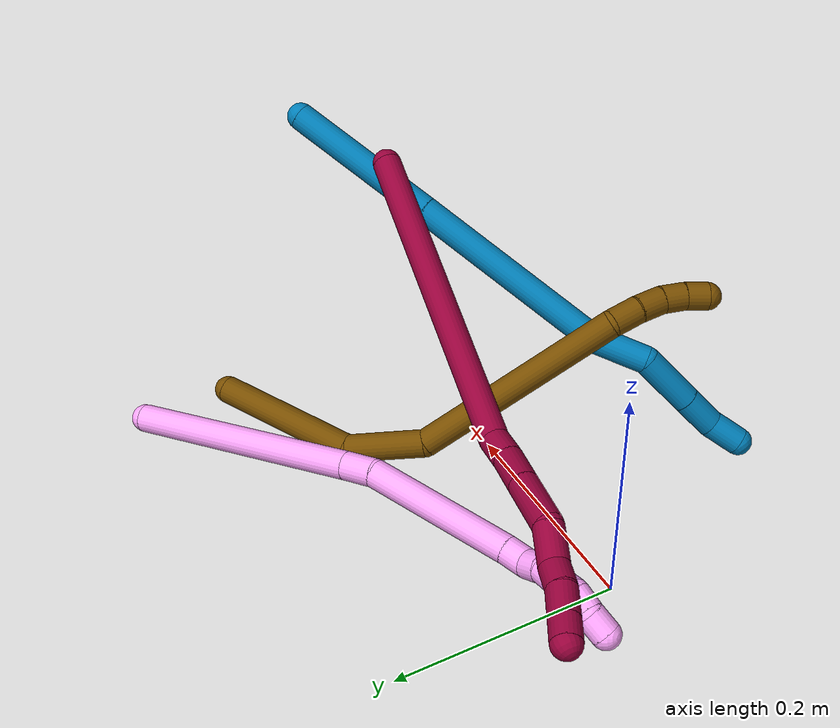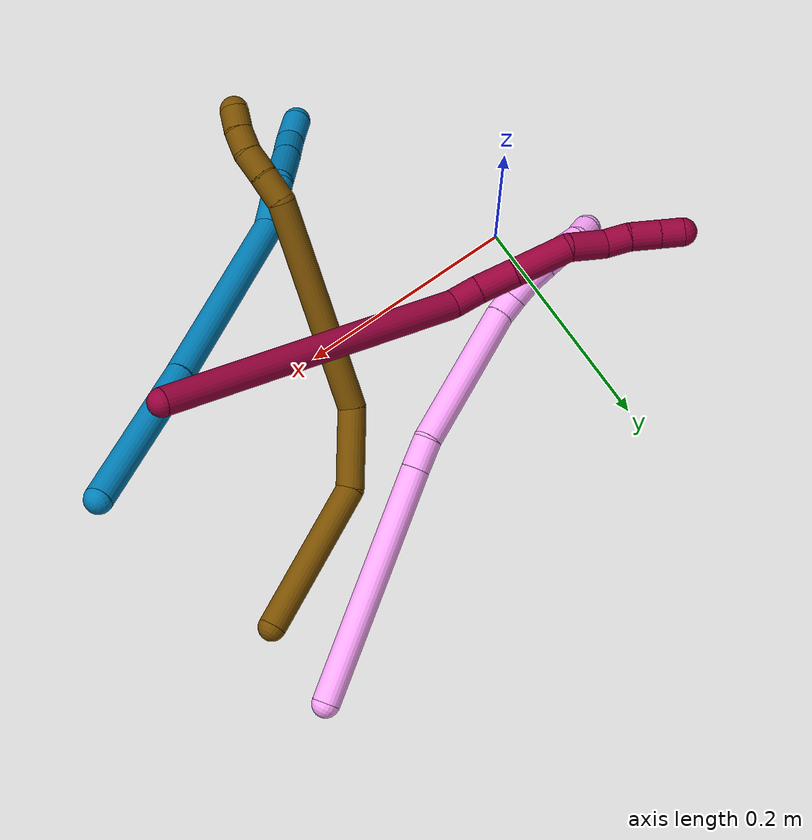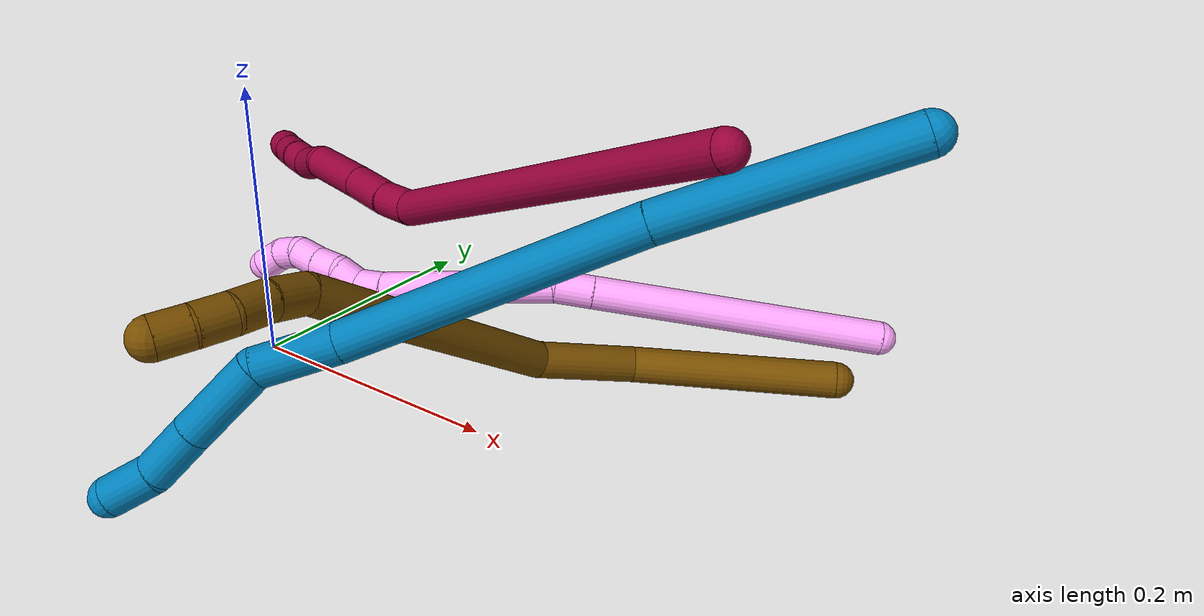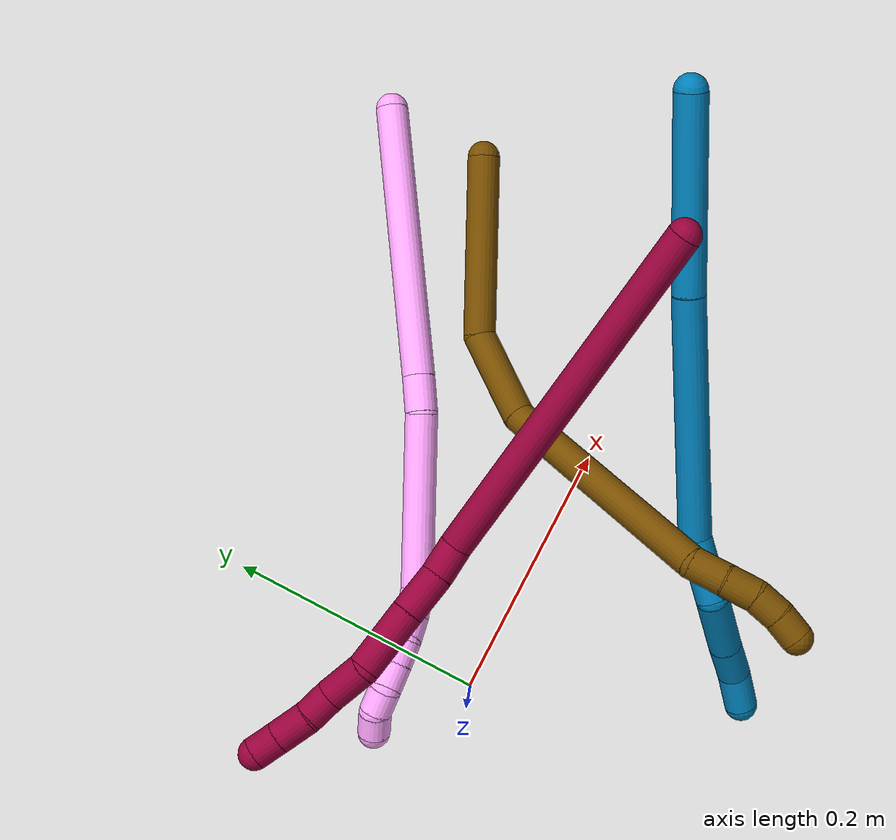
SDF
<sdf version="1.7">
 <world name="default">
  <model name="4">
   <static>0</static>
   <link name="4">
    <collision name="collision-cylinder-e_1_1_4">
     <pose>-0.015209 0.010615 -0.106325 -3.04209 -0.141389 1.91589</pose>
     <geometry><cylinder><radius>0.0125</radius><length>0.215861</length></cylinder></geometry>
     <surface>
      <friction><ode><mu>1.16</mu><mu2>1.16</mu2><slip1>0</slip1><slip2>0</slip2></ode></friction>
      <contact><ode><kp>1e+06</kp><kd>1</kd><max_vel>0</max_vel><min_depth>0.001</min_depth></ode></contact>
     </surface>
    </collision>
    <visual name="visual-cylinder-e_1_1_4">
     <pose>-0.015209 0.010615 -0.106325 -3.04209 -0.141389 1.91589</pose>
     <geometry><cylinder><radius>0.0125</radius><length>0.215861</length></cylinder></geometry>
     <material><ambient>1 0.65098 0.996078 1</ambient></material>
    </visual>
    <collision name="collision-cylinder-e_2_4_5">
     <pose>-0.032494 0.0223 -0.22663 -3.06519 -0.14695 2.18376</pose>
     <geometry><cylinder><radius>0.0125</radius><length>0.028347</length></cylinder></geometry>
     <surface>
      <friction><ode><mu>1.16</mu><mu2>1.16</mu2><slip1>0</slip1><slip2>0</slip2></ode></friction>
      <contact><ode><kp>1e+06</kp><kd>1</kd><max_vel>0</max_vel><min_depth>0.001</min_depth></ode></contact>
     </surface>
    </collision>
    <visual name="visual-cylinder-e_2_4_5">
     <pose>-0.032494 0.0223 -0.22663 -3.06519 -0.14695 2.18376</pose>
     <geometry><cylinder><radius>0.0125</radius><length>0.028347</length></cylinder></geometry>
     <material><ambient>1 0.65098 0.996078 1</ambient></material>
    </visual>
    <collision name="collision-cylinder-e_3_5_6">
     <pose>-0.058975 0.019294 -0.302964 3.07631 -0.372346 -2.79831</pose>
     <geometry><cylinder><radius>0.0125</radius><length>0.134167</length></cylinder></geometry>
     <surface>
      <friction><ode><mu>1.16</mu><mu2>1.16</mu2><slip1>0</slip1><slip2>0</slip2></ode></friction>
      <contact><ode><kp>1e+06</kp><kd>1</kd><max_vel>0</max_vel><min_depth>0.001</min_depth></ode></contact>
     </surface>
    </collision>
    <visual name="visual-cylinder-e_3_5_6">
     <pose>-0.058975 0.019294 -0.302964 3.07631 -0.372346 -2.79831</pose>
     <geometry><cylinder><radius>0.0125</radius><length>0.134167</length></cylinder></geometry>
     <material><ambient>1 0.65098 0.996078 1</ambient></material>
    </visual>
    <collision name="collision-cylinder-e_4_6_7">
     <pose>-0.086289 0.013185 -0.375494 2.9444 -0.273342 -1.89453</pose>
     <geometry><cylinder><radius>0.0125</radius><length>0.021556</length></cylinder></geometry>
     <surface>
      <friction><ode><mu>1.16</mu><mu2>1.16</mu2><slip1>0</slip1><slip2>0</slip2></ode></friction>
      <contact><ode><kp>1e+06</kp><kd>1</kd><max_vel>0</max_vel><min_depth>0.001</min_depth></ode></contact>
     </surface>
    </collision>
    <visual name="visual-cylinder-e_4_6_7">
     <pose>-0.086289 0.013185 -0.375494 2.9444 -0.273342 -1.89453</pose>
     <geometry><cylinder><radius>0.0125</radius><length>0.021556</length></cylinder></geometry>
     <material><ambient>1 0.65098 0.996078 1</ambient></material>
    </visual>
    <collision name="collision-cylinder-e_5_7_8">
     <pose>-0.087031 0.008907 -0.395172 2.90968 0.218465 1.51058</pose>
     <geometry><cylinder><radius>0.0125</radius><length>0.020001</length></cylinder></geometry>
     <surface>
      <friction><ode><mu>1.16</mu><mu2>1.16</mu2><slip1>0</slip1><slip2>0</slip2></ode></friction>
      <contact><ode><kp>1e+06</kp><kd>1</kd><max_vel>0</max_vel><min_depth>0.001</min_depth></ode></contact>
     </surface>
    </collision>
    <visual name="visual-cylinder-e_5_7_8">
     <pose>-0.087031 0.008907 -0.395172 2.90968 0.218465 1.51058</pose>
     <geometry><cylinder><radius>0.0125</radius><length>0.020001</length></cylinder></geometry>
     <material><ambient>1 0.65098 0.996078 1</ambient></material>
    </visual>
    <collision name="collision-cylinder-e_6_8_9">
     <pose>-0.085838 0.003002 -0.413952 2.76569 -0.097326 -0.501348</pose>
     <geometry><cylinder><radius>0.0125</radius><length>0.020043</length></cylinder></geometry>
     <surface>
      <friction><ode><mu>1.16</mu><mu2>1.16</mu2><slip1>0</slip1><slip2>0</slip2></ode></friction>
      <contact><ode><kp>1e+06</kp><kd>1</kd><max_vel>0</max_vel><min_depth>0.001</min_depth></ode></contact>
     </surface>
    </collision>
    <visual name="visual-cylinder-e_6_8_9">
     <pose>-0.085838 0.003002 -0.413952 2.76569 -0.097326 -0.501348</pose>
     <geometry><cylinder><radius>0.0125</radius><length>0.020043</length></cylinder></geometry>
     <material><ambient>1 0.65098 0.996078 1</ambient></material>
    </visual>
    <collision name="collision-cylinder-e_7_9_10">
     <pose>-0.086684 -0.004316 -0.43254 2.76738 0.012739 0.067262</pose>
     <geometry><cylinder><radius>0.0125</radius><length>0.020006</length></cylinder></geometry>
     <surface>
      <friction><ode><mu>1.16</mu><mu2>1.16</mu2><slip1>0</slip1><slip2>0</slip2></ode></friction>
      <contact><ode><kp>1e+06</kp><kd>1</kd><max_vel>0</max_vel><min_depth>0.001</min_depth></ode></contact>
     </surface>
    </collision>
    <visual name="visual-cylinder-e_7_9_10">
     <pose>-0.086684 -0.004316 -0.43254 2.76738 0.012739 0.067262</pose>
     <geometry><cylinder><radius>0.0125</radius><length>0.020006</length></cylinder></geometry>
     <material><ambient>1 0.65098 0.996078 1</ambient></material>
    </visual>
    <collision name="collision-cylinder-e_8_10_11">
     <pose>-0.09111 -0.012345 -0.449609 2.62838 -0.472578 -1.48498</pose>
     <geometry><cylinder><radius>0.0125</radius><length>0.020005</length></cylinder></geometry>
     <surface>
      <friction><ode><mu>1.16</mu><mu2>1.16</mu2><slip1>0</slip1><slip2>0</slip2></ode></friction>
      <contact><ode><kp>1e+06</kp><kd>1</kd><max_vel>0</max_vel><min_depth>0.001</min_depth></ode></contact>
     </surface>
    </collision>
    <visual name="visual-cylinder-e_8_10_11">
     <pose>-0.09111 -0.012345 -0.449609 2.62838 -0.472578 -1.48498</pose>
     <geometry><cylinder><radius>0.0125</radius><length>0.020005</length></cylinder></geometry>
     <material><ambient>1 0.65098 0.996078 1</ambient></material>
    </visual>
    <collision name="collision-cylinder-e_9_11_2">
     <pose>-0.103234 -0.018376 -0.463696 2.88539 -0.858163 -2.59273</pose>
     <geometry><cylinder><radius>0.0125</radius><length>0.020012</length></cylinder></geometry>
     <surface>
      <friction><ode><mu>1.16</mu><mu2>1.16</mu2><slip1>0</slip1><slip2>0</slip2></ode></friction>
      <contact><ode><kp>1e+06</kp><kd>1</kd><max_vel>0</max_vel><min_depth>0.001</min_depth></ode></contact>
     </surface>
    </collision>
    <visual name="visual-cylinder-e_9_11_2">
     <pose>-0.103234 -0.018376 -0.463696 2.88539 -0.858163 -2.59273</pose>
     <geometry><cylinder><radius>0.0125</radius><length>0.020012</length></cylinder></geometry>
     <material><ambient>1 0.65098 0.996078 1</ambient></material>
    </visual>
    <collision name="collision-sphere-2">
     <pose>-0.110805 -0.020034 -0.470025 0 -0 0</pose>
     <geometry><sphere><radius>0.0125</radius></sphere></geometry>
     <surface>
      <friction><ode><mu>1.16</mu><mu2>1.16</mu2><slip1>0</slip1><slip2>0</slip2></ode></friction>
      <contact><ode><kp>1e+06</kp><kd>1</kd><max_vel>0</max_vel><min_depth>0.001</min_depth></ode></contact>
     </surface>
    </collision>
    <visual name="visual-sphere-2">
     <pose>-0.110805 -0.020034 -0.470025 0 -0 0</pose>
     <geometry><sphere><radius>0.0125</radius></sphere></geometry>
     <material><ambient>1 0.65098 0.996078 1</ambient></material>
    </visual>
    <collision name="collision-sphere-11">
     <pose>-0.095663 -0.016718 -0.457368 0 -0 0</pose>
     <geometry><sphere><radius>0.0125</radius></sphere></geometry>
     <surface>
      <friction><ode><mu>1.16</mu><mu2>1.16</mu2><slip1>0</slip1><slip2>0</slip2></ode></friction>
      <contact><ode><kp>1e+06</kp><kd>1</kd><max_vel>0</max_vel><min_depth>0.001</min_depth></ode></contact>
     </surface>
    </collision>
    <visual name="visual-sphere-11">
     <pose>-0.095663 -0.016718 -0.457368 0 -0 0</pose>
     <geometry><sphere><radius>0.0125</radius></sphere></geometry>
     <material><ambient>1 0.65098 0.996078 1</ambient></material>
    </visual>
    <collision name="collision-sphere-10">
     <pose>-0.086557 -0.007972 -0.44185 0 -0 0</pose>
     <geometry><sphere><radius>0.0125</radius></sphere></geometry>
     <surface>
      <friction><ode><mu>1.16</mu><mu2>1.16</mu2><slip1>0</slip1><slip2>0</slip2></ode></friction>
      <contact><ode><kp>1e+06</kp><kd>1</kd><max_vel>0</max_vel><min_depth>0.001</min_depth></ode></contact>
     </surface>
    </collision>
    <visual name="visual-sphere-10">
     <pose>-0.086557 -0.007972 -0.44185 0 -0 0</pose>
     <geometry><sphere><radius>0.0125</radius></sphere></geometry>
     <material><ambient>1 0.65098 0.996078 1</ambient></material>
    </visual>
    <collision name="collision-sphere-9">
     <pose>-0.086811 -0.00066 -0.423229 0 -0 0</pose>
     <geometry><sphere><radius>0.0125</radius></sphere></geometry>
     <surface>
      <friction><ode><mu>1.16</mu><mu2>1.16</mu2><slip1>0</slip1><slip2>0</slip2></ode></friction>
      <contact><ode><kp>1e+06</kp><kd>1</kd><max_vel>0</max_vel><min_depth>0.001</min_depth></ode></contact>
     </surface>
    </collision>
    <visual name="visual-sphere-9">
     <pose>-0.086811 -0.00066 -0.423229 0 -0 0</pose>
     <geometry><sphere><radius>0.0125</radius></sphere></geometry>
     <material><ambient>1 0.65098 0.996078 1</ambient></material>
    </visual>
    <collision name="collision-sphere-4">
     <pose>-0.030419 0.02123 -0.21265 0 -0 0</pose>
     <geometry><sphere><radius>0.0125</radius></sphere></geometry>
     <surface>
      <friction><ode><mu>1.16</mu><mu2>1.16</mu2><slip1>0</slip1><slip2>0</slip2></ode></friction>
      <contact><ode><kp>1e+06</kp><kd>1</kd><max_vel>0</max_vel><min_depth>0.001</min_depth></ode></contact>
     </surface>
    </collision>
    <visual name="visual-sphere-4">
     <pose>-0.030419 0.02123 -0.21265 0 -0 0</pose>
     <geometry><sphere><radius>0.0125</radius></sphere></geometry>
     <material><ambient>1 0.65098 0.996078 1</ambient></material>
    </visual>
    <collision name="collision-sphere-1">
     <geometry><sphere><radius>0.0125</radius></sphere></geometry>
     <surface>
      <friction><ode><mu>1.16</mu><mu2>1.16</mu2><slip1>0</slip1><slip2>0</slip2></ode></friction>
      <contact><ode><kp>1e+06</kp><kd>1</kd><max_vel>0</max_vel><min_depth>0.001</min_depth></ode></contact>
     </surface>
    </collision>
    <visual name="visual-sphere-1">
     <geometry><sphere><radius>0.0125</radius></sphere></geometry>
     <material><ambient>1 0.65098 0.996078 1</ambient></material>
    </visual>
    <collision name="collision-sphere-8">
     <pose>-0.084864 0.006664 -0.404674 0 -0 0</pose>
     <geometry><sphere><radius>0.0125</radius></sphere></geometry>
     <surface>
      <friction><ode><mu>1.16</mu><mu2>1.16</mu2><slip1>0</slip1><slip2>0</slip2></ode></friction>
      <contact><ode><kp>1e+06</kp><kd>1</kd><max_vel>0</max_vel><min_depth>0.001</min_depth></ode></contact>
     </surface>
    </collision>
    <visual name="visual-sphere-8">
     <pose>-0.084864 0.006664 -0.404674 0 -0 0</pose>
     <geometry><sphere><radius>0.0125</radius></sphere></geometry>
     <material><ambient>1 0.65098 0.996078 1</ambient></material>
    </visual>
    <collision name="collision-sphere-5">
     <pose>-0.034569 0.02337 -0.24061 0 -0 0</pose>
     <geometry><sphere><radius>0.0125</radius></sphere></geometry>
     <surface>
      <friction><ode><mu>1.16</mu><mu2>1.16</mu2><slip1>0</slip1><slip2>0</slip2></ode></friction>
      <contact><ode><kp>1e+06</kp><kd>1</kd><max_vel>0</max_vel><min_depth>0.001</min_depth></ode></contact>
     </surface>
    </collision>
    <visual name="visual-sphere-5">
     <pose>-0.034569 0.02337 -0.24061 0 -0 0</pose>
     <geometry><sphere><radius>0.0125</radius></sphere></geometry>
     <material><ambient>1 0.65098 0.996078 1</ambient></material>
    </visual>
    <collision name="collision-sphere-6">
     <pose>-0.08338 0.015218 -0.365317 0 -0 0</pose>
     <geometry><sphere><radius>0.0125</radius></sphere></geometry>
     <surface>
      <friction><ode><mu>1.16</mu><mu2>1.16</mu2><slip1>0</slip1><slip2>0</slip2></ode></friction>
      <contact><ode><kp>1e+06</kp><kd>1</kd><max_vel>0</max_vel><min_depth>0.001</min_depth></ode></contact>
     </surface>
    </collision>
    <visual name="visual-sphere-6">
     <pose>-0.08338 0.015218 -0.365317 0 -0 0</pose>
     <geometry><sphere><radius>0.0125</radius></sphere></geometry>
     <material><ambient>1 0.65098 0.996078 1</ambient></material>
    </visual>
    <collision name="collision-sphere-7">
     <pose>-0.089199 0.011151 -0.385671 0 -0 0</pose>
     <geometry><sphere><radius>0.0125</radius></sphere></geometry>
     <surface>
      <friction><ode><mu>1.16</mu><mu2>1.16</mu2><slip1>0</slip1><slip2>0</slip2></ode></friction>
      <contact><ode><kp>1e+06</kp><kd>1</kd><max_vel>0</max_vel><min_depth>0.001</min_depth></ode></contact>
     </surface>
    </collision>
    <visual name="visual-sphere-7">
     <pose>-0.089199 0.011151 -0.385671 0 -0 0</pose>
     <geometry><sphere><radius>0.0125</radius></sphere></geometry>
     <material><ambient>1 0.65098 0.996078 1</ambient></material>
    </visual>
    <inertial>
     <pose>-0.046122 0.010667 -0.242493 0 -0 0</pose>
     <mass>0.5</mass>
     <inertia>
      <ixx>0.000251</ixx>
      <ixy>0</ixy>
      <ixz>0</ixz>
      <iyy>0.001216</iyy>
      <iyz>0</iyz>
      <izz>9.2e-05</izz>
     </inertia>
    </inertial>
   </link>
   <pose>0.37061 0.262694 0.012287 2.7239 -1.26305 0.90536</pose>
  </model>
  <model name="8">
   <static>0</static>
   <link name="8">
    <collision name="collision-cylinder-e_1_1_4">
     <pose>0.010021 0.007315 -0.142008 -3.09013 0.070355 -1.87864</pose>
     <geometry><cylinder><radius>0.0125</radius><length>0.285098</length></cylinder></geometry>
     <surface>
      <friction><ode><mu>1.16</mu><mu2>1.16</mu2><slip1>0</slip1><slip2>0</slip2></ode></friction>
      <contact><ode><kp>1e+06</kp><kd>1</kd><max_vel>0</max_vel><min_depth>0.001</min_depth></ode></contact>
     </surface>
    </collision>
    <visual name="visual-cylinder-e_1_1_4">
     <pose>0.010021 0.007315 -0.142008 -3.09013 0.070355 -1.87864</pose>
     <geometry><cylinder><radius>0.0125</radius><length>0.285098</length></cylinder></geometry>
     <material><ambient>0.584314 0 0.227451 1</ambient></material>
    </visual>
    <collision name="collision-cylinder-e_2_4_5">
     <pose>0.015808 0.015663 -0.296211 -3.05707 -0.333031 2.64865</pose>
     <geometry><cylinder><radius>0.0125</radius><length>0.025901</length></cylinder></geometry>
     <surface>
      <friction><ode><mu>1.16</mu><mu2>1.16</mu2><slip1>0</slip1><slip2>0</slip2></ode></friction>
      <contact><ode><kp>1e+06</kp><kd>1</kd><max_vel>0</max_vel><min_depth>0.001</min_depth></ode></contact>
     </surface>
    </collision>
    <visual name="visual-cylinder-e_2_4_5">
     <pose>0.015808 0.015663 -0.296211 -3.05707 -0.333031 2.64865</pose>
     <geometry><cylinder><radius>0.0125</radius><length>0.025901</length></cylinder></geometry>
     <material><ambient>0.584314 0 0.227451 1</ambient></material>
    </visual>
    <collision name="collision-cylinder-e_3_5_6">
     <pose>0.005284 0.020031 -0.324064 -2.93175 -0.374417 2.12683</pose>
     <geometry><cylinder><radius>0.0125</radius><length>0.034401</length></cylinder></geometry>
     <surface>
      <friction><ode><mu>1.16</mu><mu2>1.16</mu2><slip1>0</slip1><slip2>0</slip2></ode></friction>
      <contact><ode><kp>1e+06</kp><kd>1</kd><max_vel>0</max_vel><min_depth>0.001</min_depth></ode></contact>
     </surface>
    </collision>
    <visual name="visual-cylinder-e_3_5_6">
     <pose>0.005284 0.020031 -0.324064 -2.93175 -0.374417 2.12683</pose>
     <geometry><cylinder><radius>0.0125</radius><length>0.034401</length></cylinder></geometry>
     <material><ambient>0.584314 0 0.227451 1</ambient></material>
    </visual>
    <collision name="collision-cylinder-e_4_6_7">
     <pose>-0.009896 0.027849 -0.363132 -2.95237 -0.356931 2.17304</pose>
     <geometry><cylinder><radius>0.0125</radius><length>0.050878</length></cylinder></geometry>
     <surface>
      <friction><ode><mu>1.16</mu><mu2>1.16</mu2><slip1>0</slip1><slip2>0</slip2></ode></friction>
      <contact><ode><kp>1e+06</kp><kd>1</kd><max_vel>0</max_vel><min_depth>0.001</min_depth></ode></contact>
     </surface>
    </collision>
    <visual name="visual-cylinder-e_4_6_7">
     <pose>-0.009896 0.027849 -0.363132 -2.95237 -0.356931 2.17304</pose>
     <geometry><cylinder><radius>0.0125</radius><length>0.050878</length></cylinder></geometry>
     <material><ambient>0.584314 0 0.227451 1</ambient></material>
    </visual>
    <collision name="collision-cylinder-e_5_7_8">
     <pose>-0.017481 0.037193 -0.402684 -2.84915 0.077148 -0.512571</pose>
     <geometry><cylinder><radius>0.0125</radius><length>0.033817</length></cylinder></geometry>
     <surface>
      <friction><ode><mu>1.16</mu><mu2>1.16</mu2><slip1>0</slip1><slip2>0</slip2></ode></friction>
      <contact><ode><kp>1e+06</kp><kd>1</kd><max_vel>0</max_vel><min_depth>0.001</min_depth></ode></contact>
     </surface>
    </collision>
    <visual name="visual-cylinder-e_5_7_8">
     <pose>-0.017481 0.037193 -0.402684 -2.84915 0.077148 -0.512571</pose>
     <geometry><cylinder><radius>0.0125</radius><length>0.033817</length></cylinder></geometry>
     <material><ambient>0.584314 0 0.227451 1</ambient></material>
    </visual>
    <collision name="collision-cylinder-e_6_8_9">
     <pose>-0.018984 0.045475 -0.42913 -2.82092 -0.25297 1.33267</pose>
     <geometry><cylinder><radius>0.0125</radius><length>0.022428</length></cylinder></geometry>
     <surface>
      <friction><ode><mu>1.16</mu><mu2>1.16</mu2><slip1>0</slip1><slip2>0</slip2></ode></friction>
      <contact><ode><kp>1e+06</kp><kd>1</kd><max_vel>0</max_vel><min_depth>0.001</min_depth></ode></contact>
     </surface>
    </collision>
    <visual name="visual-cylinder-e_6_8_9">
     <pose>-0.018984 0.045475 -0.42913 -2.82092 -0.25297 1.33267</pose>
     <geometry><cylinder><radius>0.0125</radius><length>0.022428</length></cylinder></geometry>
     <material><ambient>0.584314 0 0.227451 1</ambient></material>
    </visual>
    <collision name="collision-cylinder-e_7_9_10">
     <pose>-0.023056 0.054462 -0.451499 -2.70944 -0.094914 0.426156</pose>
     <geometry><cylinder><radius>0.0125</radius><length>0.026693</length></cylinder></geometry>
     <surface>
      <friction><ode><mu>1.16</mu><mu2>1.16</mu2><slip1>0</slip1><slip2>0</slip2></ode></friction>
      <contact><ode><kp>1e+06</kp><kd>1</kd><max_vel>0</max_vel><min_depth>0.001</min_depth></ode></contact>
     </surface>
    </collision>
    <visual name="visual-cylinder-e_7_9_10">
     <pose>-0.023056 0.054462 -0.451499 -2.70944 -0.094914 0.426156</pose>
     <geometry><cylinder><radius>0.0125</radius><length>0.026693</length></cylinder></geometry>
     <material><ambient>0.584314 0 0.227451 1</ambient></material>
    </visual>
    <collision name="collision-cylinder-e_8_10_2">
     <pose>-0.025618 0.064548 -0.472831 -2.68771 -0.125113 0.529762</pose>
     <geometry><cylinder><radius>0.0125</radius><length>0.020785</length></cylinder></geometry>
     <surface>
      <friction><ode><mu>1.16</mu><mu2>1.16</mu2><slip1>0</slip1><slip2>0</slip2></ode></friction>
      <contact><ode><kp>1e+06</kp><kd>1</kd><max_vel>0</max_vel><min_depth>0.001</min_depth></ode></contact>
     </surface>
    </collision>
    <visual name="visual-cylinder-e_8_10_2">
     <pose>-0.025618 0.064548 -0.472831 -2.68771 -0.125113 0.529762</pose>
     <geometry><cylinder><radius>0.0125</radius><length>0.020785</length></cylinder></geometry>
     <material><ambient>0.584314 0 0.227451 1</ambient></material>
    </visual>
    <collision name="collision-sphere-2">
     <pose>-0.026914 0.069069 -0.482098 0 -0 0</pose>
     <geometry><sphere><radius>0.0125</radius></sphere></geometry>
     <surface>
      <friction><ode><mu>1.16</mu><mu2>1.16</mu2><slip1>0</slip1><slip2>0</slip2></ode></friction>
      <contact><ode><kp>1e+06</kp><kd>1</kd><max_vel>0</max_vel><min_depth>0.001</min_depth></ode></contact>
     </surface>
    </collision>
    <visual name="visual-sphere-2">
     <pose>-0.026914 0.069069 -0.482098 0 -0 0</pose>
     <geometry><sphere><radius>0.0125</radius></sphere></geometry>
     <material><ambient>0.584314 0 0.227451 1</ambient></material>
    </visual>
    <collision name="collision-sphere-10">
     <pose>-0.024321 0.060027 -0.463564 0 -0 0</pose>
     <geometry><sphere><radius>0.0125</radius></sphere></geometry>
     <surface>
      <friction><ode><mu>1.16</mu><mu2>1.16</mu2><slip1>0</slip1><slip2>0</slip2></ode></friction>
      <contact><ode><kp>1e+06</kp><kd>1</kd><max_vel>0</max_vel><min_depth>0.001</min_depth></ode></contact>
     </surface>
    </collision>
    <visual name="visual-sphere-10">
     <pose>-0.024321 0.060027 -0.463564 0 -0 0</pose>
     <geometry><sphere><radius>0.0125</radius></sphere></geometry>
     <material><ambient>0.584314 0 0.227451 1</ambient></material>
    </visual>
    <collision name="collision-sphere-9">
     <pose>-0.021791 0.048897 -0.439434 0 -0 0</pose>
     <geometry><sphere><radius>0.0125</radius></sphere></geometry>
     <surface>
      <friction><ode><mu>1.16</mu><mu2>1.16</mu2><slip1>0</slip1><slip2>0</slip2></ode></friction>
      <contact><ode><kp>1e+06</kp><kd>1</kd><max_vel>0</max_vel><min_depth>0.001</min_depth></ode></contact>
     </surface>
    </collision>
    <visual name="visual-sphere-9">
     <pose>-0.021791 0.048897 -0.439434 0 -0 0</pose>
     <geometry><sphere><radius>0.0125</radius></sphere></geometry>
     <material><ambient>0.584314 0 0.227451 1</ambient></material>
    </visual>
    <collision name="collision-sphere-4">
     <pose>0.020041 0.01463 -0.284016 0 -0 0</pose>
     <geometry><sphere><radius>0.0125</radius></sphere></geometry>
     <surface>
      <friction><ode><mu>1.16</mu><mu2>1.16</mu2><slip1>0</slip1><slip2>0</slip2></ode></friction>
      <contact><ode><kp>1e+06</kp><kd>1</kd><max_vel>0</max_vel><min_depth>0.001</min_depth></ode></contact>
     </surface>
    </collision>
    <visual name="visual-sphere-4">
     <pose>0.020041 0.01463 -0.284016 0 -0 0</pose>
     <geometry><sphere><radius>0.0125</radius></sphere></geometry>
     <material><ambient>0.584314 0 0.227451 1</ambient></material>
    </visual>
    <collision name="collision-sphere-1">
     <geometry><sphere><radius>0.0125</radius></sphere></geometry>
     <surface>
      <friction><ode><mu>1.16</mu><mu2>1.16</mu2><slip1>0</slip1><slip2>0</slip2></ode></friction>
      <contact><ode><kp>1e+06</kp><kd>1</kd><max_vel>0</max_vel><min_depth>0.001</min_depth></ode></contact>
     </surface>
    </collision>
    <visual name="visual-sphere-1">
     <geometry><sphere><radius>0.0125</radius></sphere></geometry>
     <material><ambient>0.584314 0 0.227451 1</ambient></material>
    </visual>
    <collision name="collision-sphere-8">
     <pose>-0.016178 0.042053 -0.418827 0 -0 0</pose>
     <geometry><sphere><radius>0.0125</radius></sphere></geometry>
     <surface>
      <friction><ode><mu>1.16</mu><mu2>1.16</mu2><slip1>0</slip1><slip2>0</slip2></ode></friction>
      <contact><ode><kp>1e+06</kp><kd>1</kd><max_vel>0</max_vel><min_depth>0.001</min_depth></ode></contact>
     </surface>
    </collision>
    <visual name="visual-sphere-8">
     <pose>-0.016178 0.042053 -0.418827 0 -0 0</pose>
     <geometry><sphere><radius>0.0125</radius></sphere></geometry>
     <material><ambient>0.584314 0 0.227451 1</ambient></material>
    </visual>
    <collision name="collision-sphere-5">
     <pose>0.011574 0.016696 -0.308406 0 -0 0</pose>
     <geometry><sphere><radius>0.0125</radius></sphere></geometry>
     <surface>
      <friction><ode><mu>1.16</mu><mu2>1.16</mu2><slip1>0</slip1><slip2>0</slip2></ode></friction>
      <contact><ode><kp>1e+06</kp><kd>1</kd><max_vel>0</max_vel><min_depth>0.001</min_depth></ode></contact>
     </surface>
    </collision>
    <visual name="visual-sphere-5">
     <pose>0.011574 0.016696 -0.308406 0 -0 0</pose>
     <geometry><sphere><radius>0.0125</radius></sphere></geometry>
     <material><ambient>0.584314 0 0.227451 1</ambient></material>
    </visual>
    <collision name="collision-sphere-6">
     <pose>-0.001007 0.023366 -0.339721 0 -0 0</pose>
     <geometry><sphere><radius>0.0125</radius></sphere></geometry>
     <surface>
      <friction><ode><mu>1.16</mu><mu2>1.16</mu2><slip1>0</slip1><slip2>0</slip2></ode></friction>
      <contact><ode><kp>1e+06</kp><kd>1</kd><max_vel>0</max_vel><min_depth>0.001</min_depth></ode></contact>
     </surface>
    </collision>
    <visual name="visual-sphere-6">
     <pose>-0.001007 0.023366 -0.339721 0 -0 0</pose>
     <geometry><sphere><radius>0.0125</radius></sphere></geometry>
     <material><ambient>0.584314 0 0.227451 1</ambient></material>
    </visual>
    <collision name="collision-sphere-7">
     <pose>-0.018784 0.032332 -0.386542 0 -0 0</pose>
     <geometry><sphere><radius>0.0125</radius></sphere></geometry>
     <surface>
      <friction><ode><mu>1.16</mu><mu2>1.16</mu2><slip1>0</slip1><slip2>0</slip2></ode></friction>
      <contact><ode><kp>1e+06</kp><kd>1</kd><max_vel>0</max_vel><min_depth>0.001</min_depth></ode></contact>
     </surface>
    </collision>
    <visual name="visual-sphere-7">
     <pose>-0.018784 0.032332 -0.386542 0 -0 0</pose>
     <geometry><sphere><radius>0.0125</radius></sphere></geometry>
     <material><ambient>0.584314 0 0.227451 1</ambient></material>
    </visual>
    <inertial>
     <pose>0.00156 0.01934 -0.245807 0 -0 0</pose>
     <mass>0.5</mass>
     <inertia>
      <ixx>-0.002422</ixx>
      <ixy>0</ixy>
      <ixz>0</ixz>
      <iyy>-0.001225</iyy>
      <iyz>0</iyz>
      <izz>-0.000273</izz>
     </inertia>
    </inertial>
   </link>
   <pose>0.356409 0.017487 0.218425 0.610709 1.18371 0.561844</pose>
  </model>
  <model name="9">
   <static>0</static>
   <link name="9">
    <collision name="collision-cylinder-e_1_1_4">
     <pose>-0.02236 -0.004384 -0.068407 3.0776 -0.31532 -2.74421</pose>
     <geometry><cylinder><radius>0.0125</radius><length>0.144204</length></cylinder></geometry>
     <surface>
      <friction><ode><mu>1.16</mu><mu2>1.16</mu2><slip1>0</slip1><slip2>0</slip2></ode></friction>
      <contact><ode><kp>1e+06</kp><kd>1</kd><max_vel>0</max_vel><min_depth>0.001</min_depth></ode></contact>
     </surface>
    </collision>
    <visual name="visual-cylinder-e_1_1_4">
     <pose>-0.02236 -0.004384 -0.068407 3.0776 -0.31532 -2.74421</pose>
     <geometry><cylinder><radius>0.0125</radius><length>0.144204</length></cylinder></geometry>
     <material><ambient>0 0.490196 0.709804 1</ambient></material>
    </visual>
    <collision name="collision-cylinder-e_2_4_5">
     <pose>-0.069618 -0.018275 -0.227054 3.03662 -0.267787 -2.39786</pose>
     <geometry><cylinder><radius>0.0125</radius><length>0.188188</length></cylinder></geometry>
     <surface>
      <friction><ode><mu>1.16</mu><mu2>1.16</mu2><slip1>0</slip1><slip2>0</slip2></ode></friction>
      <contact><ode><kp>1e+06</kp><kd>1</kd><max_vel>0</max_vel><min_depth>0.001</min_depth></ode></contact>
     </surface>
    </collision>
    <visual name="visual-cylinder-e_2_4_5">
     <pose>-0.069618 -0.018275 -0.227054 3.03662 -0.267787 -2.39786</pose>
     <geometry><cylinder><radius>0.0125</radius><length>0.188188</length></cylinder></geometry>
     <material><ambient>0 0.490196 0.709804 1</ambient></material>
    </visual>
    <collision name="collision-cylinder-e_3_5_6">
     <pose>-0.104604 -0.035633 -0.338676 2.78974 -0.416999 -1.74404</pose>
     <geometry><cylinder><radius>0.0125</radius><length>0.049823</length></cylinder></geometry>
     <surface>
      <friction><ode><mu>1.16</mu><mu2>1.16</mu2><slip1>0</slip1><slip2>0</slip2></ode></friction>
      <contact><ode><kp>1e+06</kp><kd>1</kd><max_vel>0</max_vel><min_depth>0.001</min_depth></ode></contact>
     </surface>
    </collision>
    <visual name="visual-cylinder-e_3_5_6">
     <pose>-0.104604 -0.035633 -0.338676 2.78974 -0.416999 -1.74404</pose>
     <geometry><cylinder><radius>0.0125</radius><length>0.049823</length></cylinder></geometry>
     <material><ambient>0 0.490196 0.709804 1</ambient></material>
    </visual>
    <collision name="collision-cylinder-e_4_6_7">
     <pose>-0.112146 -0.051475 -0.385508 2.83732 0.095235 0.602677</pose>
     <geometry><cylinder><radius>0.0125</radius><length>0.053594</length></cylinder></geometry>
     <surface>
      <friction><ode><mu>1.16</mu><mu2>1.16</mu2><slip1>0</slip1><slip2>0</slip2></ode></friction>
      <contact><ode><kp>1e+06</kp><kd>1</kd><max_vel>0</max_vel><min_depth>0.001</min_depth></ode></contact>
     </surface>
    </collision>
    <visual name="visual-cylinder-e_4_6_7">
     <pose>-0.112146 -0.051475 -0.385508 2.83732 0.095235 0.602677</pose>
     <geometry><cylinder><radius>0.0125</radius><length>0.053594</length></cylinder></geometry>
     <material><ambient>0 0.490196 0.709804 1</ambient></material>
    </visual>
    <collision name="collision-cylinder-e_5_7_8">
     <pose>-0.107772 -0.064979 -0.42704 2.81141 0.106956 0.621738</pose>
     <geometry><cylinder><radius>0.0125</radius><length>0.034194</length></cylinder></geometry>
     <surface>
      <friction><ode><mu>1.16</mu><mu2>1.16</mu2><slip1>0</slip1><slip2>0</slip2></ode></friction>
      <contact><ode><kp>1e+06</kp><kd>1</kd><max_vel>0</max_vel><min_depth>0.001</min_depth></ode></contact>
     </surface>
    </collision>
    <visual name="visual-cylinder-e_5_7_8">
     <pose>-0.107772 -0.064979 -0.42704 2.81141 0.106956 0.621738</pose>
     <geometry><cylinder><radius>0.0125</radius><length>0.034194</length></cylinder></geometry>
     <material><ambient>0 0.490196 0.709804 1</ambient></material>
    </visual>
    <collision name="collision-cylinder-e_6_8_2">
     <pose>-0.108839 -0.074643 -0.45724 2.85552 -0.194034 -1.18855</pose>
     <geometry><cylinder><radius>0.0125</radius><length>0.029997</length></cylinder></geometry>
     <surface>
      <friction><ode><mu>1.16</mu><mu2>1.16</mu2><slip1>0</slip1><slip2>0</slip2></ode></friction>
      <contact><ode><kp>1e+06</kp><kd>1</kd><max_vel>0</max_vel><min_depth>0.001</min_depth></ode></contact>
     </surface>
    </collision>
    <visual name="visual-cylinder-e_6_8_2">
     <pose>-0.108839 -0.074643 -0.45724 2.85552 -0.194034 -1.18855</pose>
     <geometry><cylinder><radius>0.0125</radius><length>0.029997</length></cylinder></geometry>
     <material><ambient>0 0.490196 0.709804 1</ambient></material>
    </visual>
    <collision name="collision-sphere-2">
     <pose>-0.111731 -0.078796 -0.471359 0 -0 0</pose>
     <geometry><sphere><radius>0.0125</radius></sphere></geometry>
     <surface>
      <friction><ode><mu>1.16</mu><mu2>1.16</mu2><slip1>0</slip1><slip2>0</slip2></ode></friction>
      <contact><ode><kp>1e+06</kp><kd>1</kd><max_vel>0</max_vel><min_depth>0.001</min_depth></ode></contact>
     </surface>
    </collision>
    <visual name="visual-sphere-2">
     <pose>-0.111731 -0.078796 -0.471359 0 -0 0</pose>
     <geometry><sphere><radius>0.0125</radius></sphere></geometry>
     <material><ambient>0 0.490196 0.709804 1</ambient></material>
    </visual>
    <collision name="collision-sphere-4">
     <pose>-0.04472 -0.008768 -0.136813 0 -0 0</pose>
     <geometry><sphere><radius>0.0125</radius></sphere></geometry>
     <surface>
      <friction><ode><mu>1.16</mu><mu2>1.16</mu2><slip1>0</slip1><slip2>0</slip2></ode></friction>
      <contact><ode><kp>1e+06</kp><kd>1</kd><max_vel>0</max_vel><min_depth>0.001</min_depth></ode></contact>
     </surface>
    </collision>
    <visual name="visual-sphere-4">
     <pose>-0.04472 -0.008768 -0.136813 0 -0 0</pose>
     <geometry><sphere><radius>0.0125</radius></sphere></geometry>
     <material><ambient>0 0.490196 0.709804 1</ambient></material>
    </visual>
    <collision name="collision-sphere-1">
     <geometry><sphere><radius>0.0125</radius></sphere></geometry>
     <surface>
      <friction><ode><mu>1.16</mu><mu2>1.16</mu2><slip1>0</slip1><slip2>0</slip2></ode></friction>
      <contact><ode><kp>1e+06</kp><kd>1</kd><max_vel>0</max_vel><min_depth>0.001</min_depth></ode></contact>
     </surface>
    </collision>
    <visual name="visual-sphere-1">
     <geometry><sphere><radius>0.0125</radius></sphere></geometry>
     <material><ambient>0 0.490196 0.709804 1</ambient></material>
    </visual>
    <collision name="collision-sphere-8">
     <pose>-0.105947 -0.07049 -0.443121 0 -0 0</pose>
     <geometry><sphere><radius>0.0125</radius></sphere></geometry>
     <surface>
      <friction><ode><mu>1.16</mu><mu2>1.16</mu2><slip1>0</slip1><slip2>0</slip2></ode></friction>
      <contact><ode><kp>1e+06</kp><kd>1</kd><max_vel>0</max_vel><min_depth>0.001</min_depth></ode></contact>
     </surface>
    </collision>
    <visual name="visual-sphere-8">
     <pose>-0.105947 -0.07049 -0.443121 0 -0 0</pose>
     <geometry><sphere><radius>0.0125</radius></sphere></geometry>
     <material><ambient>0 0.490196 0.709804 1</ambient></material>
    </visual>
    <collision name="collision-sphere-5">
     <pose>-0.094515 -0.027783 -0.317295 0 -0 0</pose>
     <geometry><sphere><radius>0.0125</radius></sphere></geometry>
     <surface>
      <friction><ode><mu>1.16</mu><mu2>1.16</mu2><slip1>0</slip1><slip2>0</slip2></ode></friction>
      <contact><ode><kp>1e+06</kp><kd>1</kd><max_vel>0</max_vel><min_depth>0.001</min_depth></ode></contact>
     </surface>
    </collision>
    <visual name="visual-sphere-5">
     <pose>-0.094515 -0.027783 -0.317295 0 -0 0</pose>
     <geometry><sphere><radius>0.0125</radius></sphere></geometry>
     <material><ambient>0 0.490196 0.709804 1</ambient></material>
    </visual>
    <collision name="collision-sphere-6">
     <pose>-0.114694 -0.043483 -0.360058 0 -0 0</pose>
     <geometry><sphere><radius>0.0125</radius></sphere></geometry>
     <surface>
      <friction><ode><mu>1.16</mu><mu2>1.16</mu2><slip1>0</slip1><slip2>0</slip2></ode></friction>
      <contact><ode><kp>1e+06</kp><kd>1</kd><max_vel>0</max_vel><min_depth>0.001</min_depth></ode></contact>
     </surface>
    </collision>
    <visual name="visual-sphere-6">
     <pose>-0.114694 -0.043483 -0.360058 0 -0 0</pose>
     <geometry><sphere><radius>0.0125</radius></sphere></geometry>
     <material><ambient>0 0.490196 0.709804 1</ambient></material>
    </visual>
    <collision name="collision-sphere-7">
     <pose>-0.109597 -0.059467 -0.410958 0 -0 0</pose>
     <geometry><sphere><radius>0.0125</radius></sphere></geometry>
     <surface>
      <friction><ode><mu>1.16</mu><mu2>1.16</mu2><slip1>0</slip1><slip2>0</slip2></ode></friction>
      <contact><ode><kp>1e+06</kp><kd>1</kd><max_vel>0</max_vel><min_depth>0.001</min_depth></ode></contact>
     </surface>
    </collision>
    <visual name="visual-sphere-7">
     <pose>-0.109597 -0.059467 -0.410958 0 -0 0</pose>
     <geometry><sphere><radius>0.0125</radius></sphere></geometry>
     <material><ambient>0 0.490196 0.709804 1</ambient></material>
    </visual>
    <inertial>
     <pose>-0.068995 -0.026133 -0.236893 0 -0 0</pose>
     <mass>0.5</mass>
     <inertia>
      <ixx>-0.001081</ixx>
      <ixy>0</ixy>
      <ixz>0</ixz>
      <iyy>0.000177</iyy>
      <iyz>0</iyz>
      <izz>0.000278</izz>
     </inertia>
    </inertial>
   </link>
   <pose>0.444076 0.059376 0.232823 0.091816 0.872377 0.530914</pose>
  </model>
  <model name="12">
   <static>0</static>
   <link name="12">
    <collision name="collision-cylinder-e_1_1_4">
     <pose>0.000469 -0.000294 0.070008 0.0042 0.006698 1.4e-05</pose>
     <geometry><cylinder><radius>0.0125</radius><length>0.14002</length></cylinder></geometry>
     <surface>
      <friction><ode><mu>1.16</mu><mu2>1.16</mu2><slip1>0</slip1><slip2>0</slip2></ode></friction>
      <contact><ode><kp>1e+06</kp><kd>1</kd><max_vel>0</max_vel><min_depth>0.001</min_depth></ode></contact>
     </surface>
    </collision>
    <visual name="visual-cylinder-e_1_1_4">
     <pose>0.000469 -0.000294 0.070008 0.0042 0.006698 1.4e-05</pose>
     <geometry><cylinder><radius>0.0125</radius><length>0.14002</length></cylinder></geometry>
     <material><ambient>0.466667 0.301961 0 1</ambient></material>
    </visual>
    <collision name="collision-cylinder-e_2_4_5">
     <pose>-0.014942 -0.008437 0.171368 0.245312 -0.456686 -0.057282</pose>
     <geometry><cylinder><radius>0.0125</radius><length>0.07202</length></cylinder></geometry>
     <surface>
      <friction><ode><mu>1.16</mu><mu2>1.16</mu2><slip1>0</slip1><slip2>0</slip2></ode></friction>
      <contact><ode><kp>1e+06</kp><kd>1</kd><max_vel>0</max_vel><min_depth>0.001</min_depth></ode></contact>
     </surface>
    </collision>
    <visual name="visual-cylinder-e_2_4_5">
     <pose>-0.014942 -0.008437 0.171368 0.245312 -0.456686 -0.057282</pose>
     <geometry><cylinder><radius>0.0125</radius><length>0.07202</length></cylinder></geometry>
     <material><ambient>0.466667 0.301961 0 1</ambient></material>
    </visual>
    <collision name="collision-cylinder-e_3_5_6">
     <pose>-0.094175 -0.066756 0.25614 0.757008 -0.711455 -0.293379</pose>
     <geometry><cylinder><radius>0.0125</radius><length>0.194057</length></cylinder></geometry>
     <surface>
      <friction><ode><mu>1.16</mu><mu2>1.16</mu2><slip1>0</slip1><slip2>0</slip2></ode></friction>
      <contact><ode><kp>1e+06</kp><kd>1</kd><max_vel>0</max_vel><min_depth>0.001</min_depth></ode></contact>
     </surface>
    </collision>
    <visual name="visual-cylinder-e_3_5_6">
     <pose>-0.094175 -0.066756 0.25614 0.757008 -0.711455 -0.293379</pose>
     <geometry><cylinder><radius>0.0125</radius><length>0.194057</length></cylinder></geometry>
     <material><ambient>0.466667 0.301961 0 1</ambient></material>
    </visual>
    <collision name="collision-cylinder-e_4_6_7">
     <pose>-0.169395 -0.119958 0.315495 0.431476 -1.0675 -0.257586</pose>
     <geometry><cylinder><radius>0.0125</radius><length>0.027092</length></cylinder></geometry>
     <surface>
      <friction><ode><mu>1.16</mu><mu2>1.16</mu2><slip1>0</slip1><slip2>0</slip2></ode></friction>
      <contact><ode><kp>1e+06</kp><kd>1</kd><max_vel>0</max_vel><min_depth>0.001</min_depth></ode></contact>
     </surface>
    </collision>
    <visual name="visual-cylinder-e_4_6_7">
     <pose>-0.169395 -0.119958 0.315495 0.431476 -1.0675 -0.257586</pose>
     <geometry><cylinder><radius>0.0125</radius><length>0.027092</length></cylinder></geometry>
     <material><ambient>0.466667 0.301961 0 1</ambient></material>
    </visual>
    <collision name="collision-cylinder-e_5_7_8">
     <pose>-0.192227 -0.123608 0.326931 0.165292 -1.10029 -0.101518</pose>
     <geometry><cylinder><radius>0.0125</radius><length>0.024605</length></cylinder></geometry>
     <surface>
      <friction><ode><mu>1.16</mu><mu2>1.16</mu2><slip1>0</slip1><slip2>0</slip2></ode></friction>
      <contact><ode><kp>1e+06</kp><kd>1</kd><max_vel>0</max_vel><min_depth>0.001</min_depth></ode></contact>
     </surface>
    </collision>
    <visual name="visual-cylinder-e_5_7_8">
     <pose>-0.192227 -0.123608 0.326931 0.165292 -1.10029 -0.101518</pose>
     <geometry><cylinder><radius>0.0125</radius><length>0.024605</length></cylinder></geometry>
     <material><ambient>0.466667 0.301961 0 1</ambient></material>
    </visual>
    <collision name="collision-cylinder-e_6_8_9">
     <pose>-0.211396 -0.124514 0.339414 -0.001759 -0.865681 0.000813</pose>
     <geometry><cylinder><radius>0.0125</radius><length>0.021545</length></cylinder></geometry>
     <surface>
      <friction><ode><mu>1.16</mu><mu2>1.16</mu2><slip1>0</slip1><slip2>0</slip2></ode></friction>
      <contact><ode><kp>1e+06</kp><kd>1</kd><max_vel>0</max_vel><min_depth>0.001</min_depth></ode></contact>
     </surface>
    </collision>
    <visual name="visual-cylinder-e_6_8_9">
     <pose>-0.211396 -0.124514 0.339414 -0.001759 -0.865681 0.000813</pose>
     <geometry><cylinder><radius>0.0125</radius><length>0.021545</length></cylinder></geometry>
     <material><ambient>0.466667 0.301961 0 1</ambient></material>
    </visual>
    <collision name="collision-cylinder-e_7_9_2">
     <pose>-0.226234 -0.123845 0.354286 -0.082985 -0.697418 0.030186</pose>
     <geometry><cylinder><radius>0.0125</radius><length>0.02066</length></cylinder></geometry>
     <surface>
      <friction><ode><mu>1.16</mu><mu2>1.16</mu2><slip1>0</slip1><slip2>0</slip2></ode></friction>
      <contact><ode><kp>1e+06</kp><kd>1</kd><max_vel>0</max_vel><min_depth>0.001</min_depth></ode></contact>
     </surface>
    </collision>
    <visual name="visual-cylinder-e_7_9_2">
     <pose>-0.226234 -0.123845 0.354286 -0.082985 -0.697418 0.030186</pose>
     <geometry><cylinder><radius>0.0125</radius><length>0.02066</length></cylinder></geometry>
     <material><ambient>0.466667 0.301961 0 1</ambient></material>
    </visual>
    <collision name="collision-sphere-2">
     <pose>-0.232869 -0.123189 0.362177 0 -0 0</pose>
     <geometry><sphere><radius>0.0125</radius></sphere></geometry>
     <surface>
      <friction><ode><mu>1.16</mu><mu2>1.16</mu2><slip1>0</slip1><slip2>0</slip2></ode></friction>
      <contact><ode><kp>1e+06</kp><kd>1</kd><max_vel>0</max_vel><min_depth>0.001</min_depth></ode></contact>
     </surface>
    </collision>
    <visual name="visual-sphere-2">
     <pose>-0.232869 -0.123189 0.362177 0 -0 0</pose>
     <geometry><sphere><radius>0.0125</radius></sphere></geometry>
     <material><ambient>0.466667 0.301961 0 1</ambient></material>
    </visual>
    <collision name="collision-sphere-9">
     <pose>-0.2196 -0.124501 0.346395 0 -0 0</pose>
     <geometry><sphere><radius>0.0125</radius></sphere></geometry>
     <surface>
      <friction><ode><mu>1.16</mu><mu2>1.16</mu2><slip1>0</slip1><slip2>0</slip2></ode></friction>
      <contact><ode><kp>1e+06</kp><kd>1</kd><max_vel>0</max_vel><min_depth>0.001</min_depth></ode></contact>
     </surface>
    </collision>
    <visual name="visual-sphere-9">
     <pose>-0.2196 -0.124501 0.346395 0 -0 0</pose>
     <geometry><sphere><radius>0.0125</radius></sphere></geometry>
     <material><ambient>0.466667 0.301961 0 1</ambient></material>
    </visual>
    <collision name="collision-sphere-4">
     <pose>0.000938 -0.000588 0.140016 0 -0 0</pose>
     <geometry><sphere><radius>0.0125</radius></sphere></geometry>
     <surface>
      <friction><ode><mu>1.16</mu><mu2>1.16</mu2><slip1>0</slip1><slip2>0</slip2></ode></friction>
      <contact><ode><kp>1e+06</kp><kd>1</kd><max_vel>0</max_vel><min_depth>0.001</min_depth></ode></contact>
     </surface>
    </collision>
    <visual name="visual-sphere-4">
     <pose>0.000938 -0.000588 0.140016 0 -0 0</pose>
     <geometry><sphere><radius>0.0125</radius></sphere></geometry>
     <material><ambient>0.466667 0.301961 0 1</ambient></material>
    </visual>
    <collision name="collision-sphere-1">
     <geometry><sphere><radius>0.0125</radius></sphere></geometry>
     <surface>
      <friction><ode><mu>1.16</mu><mu2>1.16</mu2><slip1>0</slip1><slip2>0</slip2></ode></friction>
      <contact><ode><kp>1e+06</kp><kd>1</kd><max_vel>0</max_vel><min_depth>0.001</min_depth></ode></contact>
     </surface>
    </collision>
    <visual name="visual-sphere-1">
     <geometry><sphere><radius>0.0125</radius></sphere></geometry>
     <material><ambient>0.466667 0.301961 0 1</ambient></material>
    </visual>
    <collision name="collision-sphere-8">
     <pose>-0.203193 -0.124526 0.332432 0 -0 0</pose>
     <geometry><sphere><radius>0.0125</radius></sphere></geometry>
     <surface>
      <friction><ode><mu>1.16</mu><mu2>1.16</mu2><slip1>0</slip1><slip2>0</slip2></ode></friction>
      <contact><ode><kp>1e+06</kp><kd>1</kd><max_vel>0</max_vel><min_depth>0.001</min_depth></ode></contact>
     </surface>
    </collision>
    <visual name="visual-sphere-8">
     <pose>-0.203193 -0.124526 0.332432 0 -0 0</pose>
     <geometry><sphere><radius>0.0125</radius></sphere></geometry>
     <material><ambient>0.466667 0.301961 0 1</ambient></material>
    </visual>
    <collision name="collision-sphere-5">
     <pose>-0.030821 -0.016286 0.20272 0 -0 0</pose>
     <geometry><sphere><radius>0.0125</radius></sphere></geometry>
     <surface>
      <friction><ode><mu>1.16</mu><mu2>1.16</mu2><slip1>0</slip1><slip2>0</slip2></ode></friction>
      <contact><ode><kp>1e+06</kp><kd>1</kd><max_vel>0</max_vel><min_depth>0.001</min_depth></ode></contact>
     </surface>
    </collision>
    <visual name="visual-sphere-5">
     <pose>-0.030821 -0.016286 0.20272 0 -0 0</pose>
     <geometry><sphere><radius>0.0125</radius></sphere></geometry>
     <material><ambient>0.466667 0.301961 0 1</ambient></material>
    </visual>
    <collision name="collision-sphere-6">
     <pose>-0.157529 -0.117226 0.30956 0 -0 0</pose>
     <geometry><sphere><radius>0.0125</radius></sphere></geometry>
     <surface>
      <friction><ode><mu>1.16</mu><mu2>1.16</mu2><slip1>0</slip1><slip2>0</slip2></ode></friction>
      <contact><ode><kp>1e+06</kp><kd>1</kd><max_vel>0</max_vel><min_depth>0.001</min_depth></ode></contact>
     </surface>
    </collision>
    <visual name="visual-sphere-6">
     <pose>-0.157529 -0.117226 0.30956 0 -0 0</pose>
     <geometry><sphere><radius>0.0125</radius></sphere></geometry>
     <material><ambient>0.466667 0.301961 0 1</ambient></material>
    </visual>
    <collision name="collision-sphere-7">
     <pose>-0.181261 -0.122691 0.321429 0 -0 0</pose>
     <geometry><sphere><radius>0.0125</radius></sphere></geometry>
     <surface>
      <friction><ode><mu>1.16</mu><mu2>1.16</mu2><slip1>0</slip1><slip2>0</slip2></ode></friction>
      <contact><ode><kp>1e+06</kp><kd>1</kd><max_vel>0</max_vel><min_depth>0.001</min_depth></ode></contact>
     </surface>
    </collision>
    <visual name="visual-sphere-7">
     <pose>-0.181261 -0.122691 0.321429 0 -0 0</pose>
     <geometry><sphere><radius>0.0125</radius></sphere></geometry>
     <material><ambient>0.466667 0.301961 0 1</ambient></material>
    </visual>
    <inertial>
     <pose>-0.075667 -0.050272 0.206148 0 -0 0</pose>
     <mass>0.5</mass>
     <inertia>
      <ixx>0.000561</ixx>
      <ixy>0</ixy>
      <ixz>0</ixz>
      <iyy>0.000638</iyy>
      <iyz>0</iyz>
      <izz>0.000781</izz>
     </inertia>
    </inertial>
   </link>
   <pose>0.370212 0.181366 0.013828 -1.58558 0.008089 2.03586</pose>
  </model>
 </world>
</sdf>
